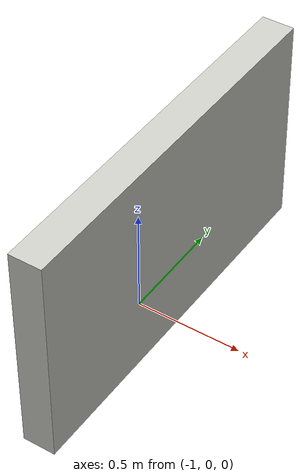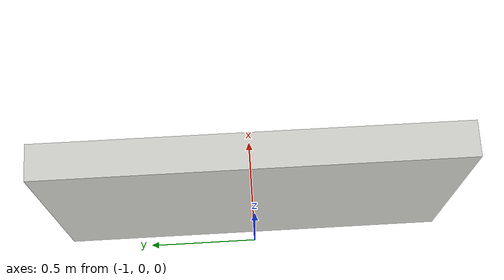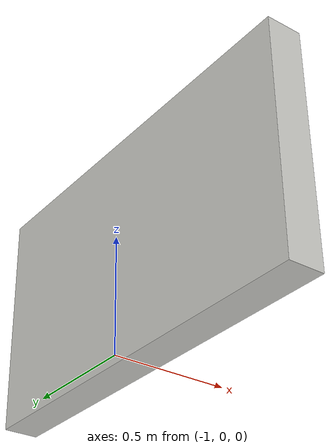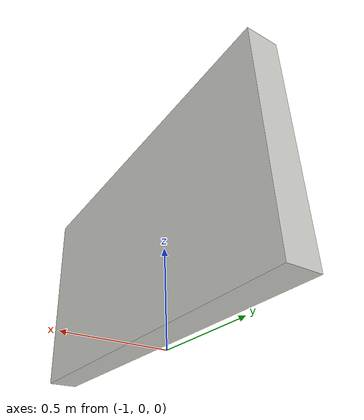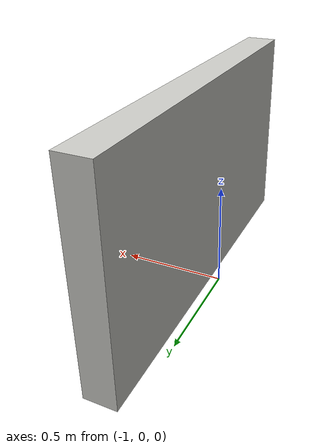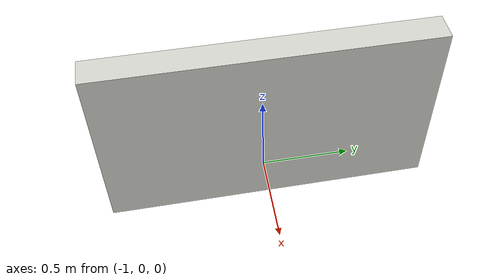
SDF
<?xml version='1.0'?>
<sdf version='1.6'>
  <model name='track_onewall'>
    <static>1</static>
    <pose frame=''>0 0 0 0 -0 0</pose>
    <link name='Wall'>
      <collision name='Wall_Collision'>
        <geometry>
          <box>
            <size>1.75 0.15 1.0</size>
          </box>
        </geometry>
        <pose frame=''>0 0 0.5 0 -0 0</pose>
      </collision>
      <visual name='Wall_Visual'>
        <pose frame=''>0 0 0.5 0 -0 0</pose>
        <geometry>
          <box>
            <size>1.75 0.15 1.0</size>
          </box>
        </geometry>
        <material>
          <script>
            <uri>file://media/materials/scripts/gazebo.material</uri>
            <name>Gazebo/CeilingTiled</name>
          </script>
          <ambient>1 0.764706 0.305882 1</ambient>
        </material>
      </visual>
      <pose frame=''>-0.8825 0.002 0 0 0 -1.5708</pose>
    </link>
  </model>
</sdf>
